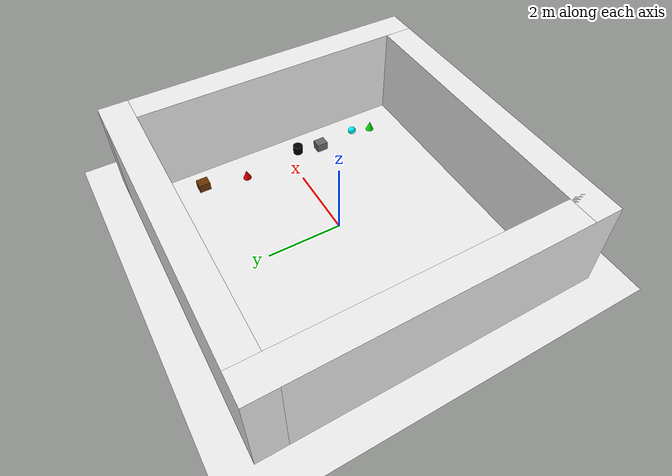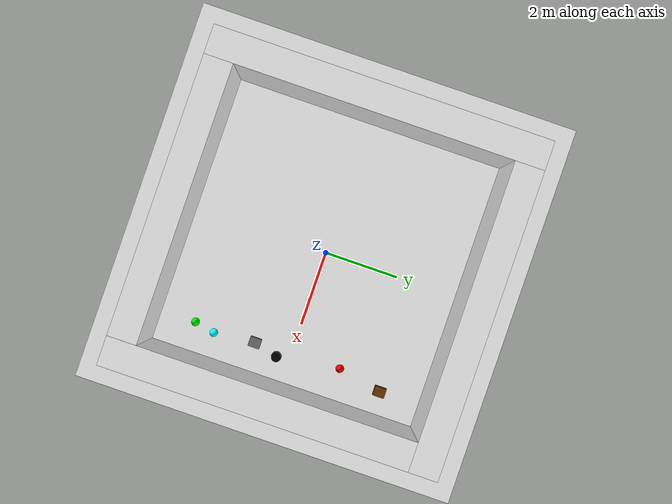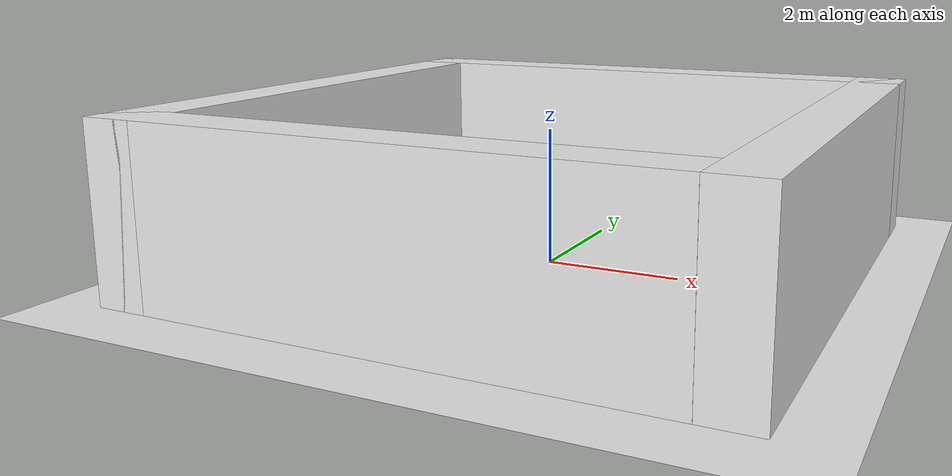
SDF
<sdf version="1.6">
 <world name="default">
  <light name="sun" type="directional">
   <pose>0 0 10 0 -0 0</pose>
   <diffuse>0.8 0.8 0.8 1</diffuse>
   <specular>0.2 0.2 0.2 1</specular>
   <attenuation>
    <range>1000</range>
    <constant>0.9</constant>
    <linear>0.01</linear>
    <quadratic>0.001</quadratic>
   </attenuation>
   <direction>-0.5 0.1 -0.9</direction>
  </light>
  <light name="sun" type="directional">
   <pose>0 0 13 0 -0 0</pose>
   <diffuse>0.8 0.8 0.8 1</diffuse>
   <specular>0.2 0.2 0.2 1</specular>
   <attenuation>
    <range>1000</range>
    <constant>0.9</constant>
    <linear>0.01</linear>
    <quadratic>0.001</quadratic>
   </attenuation>
   <direction>-0.5 0.1 -0.9</direction>
  </light>
  <model name="ground_plane">
   <static>1</static>
   <link name="link">
    <collision name="collision">
     <geometry><plane><normal>0 0 1</normal><size>100 100</size></plane></geometry>
     <surface>
      <contact><collide_bitmask>65535</collide_bitmask></contact>
      <friction><ode><mu>100</mu><mu2>50</mu2></ode></friction>
     </surface>
    </collision>
    <visual name="visual">
     <cast_shadows>0</cast_shadows>
     <geometry><plane><normal>0 0 1</normal><size>100 100</size></plane></geometry>
     <material>
      <script><uri>file://media/materials/scripts/gazebo.material</uri><name>Gazebo/White</name></script>
     </material>
    </visual>
   </link>
  </model>
  <gravity>0 0 -9.8</gravity>
  <magnetic_field>6e-06 2.3e-05 -4.2e-05</magnetic_field>
  <atmosphere type="adiabatic"/>
  <physics name="default_physics" default="0" type="ode">
   <max_step_size>0.001</max_step_size>
   <real_time_factor>1</real_time_factor>
   <real_time_update_rate>1000</real_time_update_rate>
  </physics>
  <scene><ambient>0.4 0.4 0.4 1</ambient><background>0.7 0.7 0.7 1</background><shadows>0</shadows></scene>
  <audio><device>default</device></audio>
  <spherical_coordinates>
   <surface_model>EARTH_WGS84</surface_model>
   <latitude_deg>0</latitude_deg>
   <longitude_deg>0</longitude_deg>
   <elevation>0</elevation>
   <heading_deg>0</heading_deg>
  </spherical_coordinates>
  <model name="m1">
   <link name="Wall_0">
    <collision name="Wall_0_Collision">
     <geometry><box><size>8.76 0.76 2.5</size></box></geometry>
     <pose>0 0 1.25 0 -0 0</pose>
    </collision>
    <visual name="Wall_0_Visual">
     <pose>0 0 1.25 0 -0 0</pose>
     <geometry><box><size>8.76 0.76 2.5</size></box></geometry>
     <material>
      <script><uri>file://media/materials/scripts/gazebo.material</uri><name>Gazebo/White</name></script>
      <ambient>1 1 1 1</ambient>
     </material>
     <meta><layer>0</layer></meta>
    </visual>
    <pose>-4 0 0 0 -0 -1.5708</pose>
   </link>
   <link name="Wall_2">
    <collision name="Wall_2_Collision">
     <geometry><box><size>8.76 0.76 2.5</size></box></geometry>
     <pose>0 0 1.25 0 -0 0</pose>
    </collision>
    <visual name="Wall_2_Visual">
     <pose>0 0 1.25 0 -0 0</pose>
     <geometry><box><size>8.76 0.76 2.5</size></box></geometry>
     <material>
      <script><uri>file://media/materials/scripts/gazebo.material</uri><name>Gazebo/White</name></script>
      <ambient>1 1 1 1</ambient>
     </material>
     <meta><layer>0</layer></meta>
    </visual>
    <pose>0 4 0 0 -0 3.14159</pose>
   </link>
   <link name="Wall_4">
    <collision name="Wall_4_Collision">
     <geometry><box><size>8.76 0.76 2.5</size></box></geometry>
     <pose>0 0 1.25 0 -0 0</pose>
    </collision>
    <visual name="Wall_4_Visual">
     <pose>0 0 1.25 0 -0 0</pose>
     <geometry><box><size>8.76 0.76 2.5</size></box></geometry>
     <material>
      <script><uri>file://media/materials/scripts/gazebo.material</uri><name>Gazebo/White</name></script>
      <ambient>1 1 1 1</ambient>
     </material>
     <meta><layer>0</layer></meta>
    </visual>
    <pose>4 0 0 0 -0 1.5708</pose>
   </link>
   <link name="Wall_6">
    <collision name="Wall_6_Collision">
     <geometry><box><size>7.999 0.76 2.5</size></box></geometry>
     <pose>0 0 1.25 0 -0 0</pose>
    </collision>
    <visual name="Wall_6_Visual">
     <pose>0 0 1.25 0 -0 0</pose>
     <geometry><box><size>7.999 0.76 2.5</size></box></geometry>
     <material>
      <script><uri>file://media/materials/scripts/gazebo.material</uri><name>Gazebo/White</name></script>
      <ambient>1 1 1 1</ambient>
     </material>
     <meta><layer>0</layer></meta>
    </visual>
    <pose>-0.3805 -4 0 0 -0 0</pose>
   </link>
   <static>1</static>
  </model>
  <light name="user_spot_light_0" type="spot">
   <pose>3.43494 3.34931 1 0 -0 0</pose>
   <diffuse>1 1 1 1</diffuse>
   <specular>1 1 1 1</specular>
   <direction>0 0 -1</direction>
   <attenuation>
    <range>20</range>
    <constant>0.01</constant>
    <linear>0.01</linear>
    <quadratic>0.001</quadratic>
   </attenuation>
   <cast_shadows>0</cast_shadows>
   <spot><inner_angle>1</inner_angle><outer_angle>0</outer_angle><falloff>0</falloff></spot>
  </light>
  <light name="user_spot_light_1" type="spot">
   <pose>3.5153 -3.32836 1 0 -0 0</pose>
   <diffuse>1 1 1 1</diffuse>
   <specular>1 1 1 1</specular>
   <direction>0 0 -1</direction>
   <attenuation>
    <range>20</range>
    <constant>0.01</constant>
    <linear>0.01</linear>
    <quadratic>0.001</quadratic>
   </attenuation>
   <cast_shadows>0</cast_shadows>
   <spot><inner_angle>1</inner_angle><outer_angle>0</outer_angle><falloff>0</falloff></spot>
  </light>
  <model name="cuboid">
   <link name="link_1">
    <inertial>
     <mass>1</mass>
     <inertia>
      <ixx>0.166667</ixx>
      <ixy>0</ixy>
      <ixz>0</ixz>
      <iyy>0.166667</iyy>
      <iyz>0</iyz>
      <izz>0.166667</izz>
     </inertia>
    </inertial>
    <pose>4e-06 -3e-06 0 0 -0 0</pose>
    <visual name="visual">
     <geometry>
      <mesh><uri>/home/pranavkdas/simulation_ws/src/hexbot/shapes/cuboid.stl</uri><scale>1 1 1</scale></mesh>
     </geometry>
     <material>
      <lighting>1</lighting>
      <ambient>0.4 0.2 0 1</ambient>
      <diffuse>0.4 0.2 0 1</diffuse>
      <specular>0.4 0.2 0 1</specular>
      <emissive>0.4 0.2 0 1</emissive>
     </material>
    </visual>
    <collision name="collision">
     <geometry>
      <mesh><uri>/home/pranavkdas/simulation_ws/src/hexbot/shapes/cuboid.stl</uri><scale>1 1 1</scale></mesh>
     </geometry>
     <surface>
      <friction>
       <ode><mu>1</mu><mu2>1</mu2><fdir1>0 0 0</fdir1><slip1>0</slip1><slip2>0</slip2></ode>
       <torsional>
        <coefficient>1</coefficient>
        <patch_radius>0</patch_radius>
        <surface_radius>0</surface_radius>
        <use_patch_radius>1</use_patch_radius>
        <ode><slip>0</slip></ode>
       </torsional>
      </friction>
      <bounce><restitution_coefficient>0</restitution_coefficient><threshold>1e+06</threshold></bounce>
      <contact>
       <collide_without_contact>0</collide_without_contact>
       <collide_without_contact_bitmask>1</collide_without_contact_bitmask>
       <collide_bitmask>1</collide_bitmask>
       <ode>
        <soft_cfm>0</soft_cfm>
        <soft_erp>0.2</soft_erp>
        <kp>1e+13</kp>
        <kd>1</kd>
        <max_vel>0.01</max_vel>
        <min_depth>0</min_depth>
       </ode>
       <bullet>
        <split_impulse>1</split_impulse>
        <split_impulse_penetration_threshold>-0.01</split_impulse_penetration_threshold>
        <soft_cfm>0</soft_cfm>
        <soft_erp>0.2</soft_erp>
        <kp>1e+13</kp>
        <kd>1</kd>
       </bullet>
      </contact>
     </surface>
    </collision>
   </link>
   <static>0</static>
   <pose>3.00093 2.53255 -7e-06 4e-06 -4e-06 0</pose>
  </model>
  <model name="sphere">
   <link name="link_4">
    <inertial>
     <mass>1</mass>
     <inertia>
      <ixx>0.166667</ixx>
      <ixy>0</ixy>
      <ixz>0</ixz>
      <iyy>0.166667</iyy>
      <iyz>0</iyz>
      <izz>0.166667</izz>
     </inertia>
    </inertial>
    <pose>-4e-06 0 0 0 -0 0</pose>
    <visual name="visual">
     <geometry>
      <mesh><uri>/home/pranavkdas/simulation_ws/src/hexbot/shapes/sphere.stl</uri><scale>1 1 1</scale></mesh>
     </geometry>
     <material>
      <lighting>1</lighting>
      <ambient>0 1 1 1</ambient>
      <diffuse>0 1 1 1</diffuse>
      <specular>0 1 1 1</specular>
      <emissive>0 1 1 1</emissive>
     </material>
    </visual>
    <collision name="collision">
     <geometry>
      <mesh><uri>/home/pranavkdas/simulation_ws/src/hexbot/shapes/sphere.stl</uri><scale>1 1 1</scale></mesh>
     </geometry>
     <surface>
      <friction>
       <ode><mu>1</mu><mu2>1</mu2><fdir1>0 0 0</fdir1><slip1>0</slip1><slip2>0</slip2></ode>
       <torsional>
        <coefficient>1</coefficient>
        <patch_radius>0</patch_radius>
        <surface_radius>0</surface_radius>
        <use_patch_radius>1</use_patch_radius>
        <ode><slip>0</slip></ode>
       </torsional>
      </friction>
      <bounce><restitution_coefficient>0</restitution_coefficient><threshold>1e+06</threshold></bounce>
      <contact>
       <collide_without_contact>0</collide_without_contact>
       <collide_without_contact_bitmask>1</collide_without_contact_bitmask>
       <collide_bitmask>1</collide_bitmask>
       <ode>
        <soft_cfm>0</soft_cfm>
        <soft_erp>0.2</soft_erp>
        <kp>1e+13</kp>
        <kd>1</kd>
        <max_vel>0.01</max_vel>
        <min_depth>0</min_depth>
       </ode>
       <bullet>
        <split_impulse>1</split_impulse>
        <split_impulse_penetration_threshold>-0.01</split_impulse_penetration_threshold>
        <soft_cfm>0</soft_cfm>
        <soft_erp>0.2</soft_erp>
        <kp>1e+13</kp>
        <kd>1</kd>
       </bullet>
      </contact>
     </surface>
    </collision>
   </link>
   <static>0</static>
   <pose>2.95037 -2.11625 0.111299 -0.049133 -0.049036 0.01673</pose>
  </model>
  <model name="cylinder_black">
   <link name="link_0">
    <inertial>
     <mass>1</mass>
     <inertia>
      <ixx>0.166667</ixx>
      <ixy>0</ixy>
      <ixz>0</ixz>
      <iyy>0.166667</iyy>
      <iyz>0</iyz>
      <izz>0.166667</izz>
     </inertia>
    </inertial>
    <pose>-4e-06 0 -0 0 -0 0</pose>
    <visual name="visual">
     <geometry>
      <mesh><uri>/home/pranavkdas/simulation_ws/src/hexbot/shapes/cylinder.stl</uri><scale>1 1 1</scale></mesh>
     </geometry>
     <material>
      <lighting>1</lighting>
      <script><uri>__default__</uri><name>ModelPreview_9::link_0::visual_MATERIAL_</name></script>
      <ambient>0 0 0 1</ambient>
      <shader type="vertex"><normal_map>__default__</normal_map></shader>
      <diffuse>0 0 0 1</diffuse>
      <specular>0 0 0 1</specular>
      <emissive>0 0 0 1</emissive>
     </material>
    </visual>
    <collision name="collision">
     <geometry>
      <mesh><uri>/home/pranavkdas/simulation_ws/src/hexbot/shapes/cylinder.stl</uri><scale>1 1 1</scale></mesh>
     </geometry>
     <surface>
      <friction>
       <ode><mu>1</mu><mu2>1</mu2><fdir1>0 0 0</fdir1><slip1>0</slip1><slip2>0</slip2></ode>
       <torsional>
        <coefficient>1</coefficient>
        <patch_radius>0</patch_radius>
        <surface_radius>0</surface_radius>
        <use_patch_radius>1</use_patch_radius>
        <ode><slip>0</slip></ode>
       </torsional>
      </friction>
      <bounce><restitution_coefficient>0</restitution_coefficient><threshold>1e+06</threshold></bounce>
      <contact>
       <collide_without_contact>0</collide_without_contact>
       <collide_without_contact_bitmask>1</collide_without_contact_bitmask>
       <collide_bitmask>1</collide_bitmask>
       <ode>
        <soft_cfm>0</soft_cfm>
        <soft_erp>0.2</soft_erp>
        <kp>1e+13</kp>
        <kd>1</kd>
        <max_vel>0.01</max_vel>
        <min_depth>0</min_depth>
       </ode>
       <bullet>
        <split_impulse>1</split_impulse>
        <split_impulse_penetration_threshold>-0.01</split_impulse_penetration_threshold>
        <soft_cfm>0</soft_cfm>
        <soft_erp>0.2</soft_erp>
        <kp>1e+13</kp>
        <kd>1</kd>
       </bullet>
      </contact>
     </surface>
    </collision>
   </link>
   <static>0</static>
   <pose>3.00963 -0.347061 -0 0 2e-06 0</pose>
  </model>
  <model name="cuboid_grey">
   <link name="link_1">
    <inertial>
     <mass>1</mass>
     <inertia>
      <ixx>0.166667</ixx>
      <ixy>0</ixy>
      <ixz>0</ixz>
      <iyy>0.166667</iyy>
      <iyz>0</iyz>
      <izz>0.166667</izz>
     </inertia>
    </inertial>
    <pose>4e-06 -3e-06 0 0 -0 0</pose>
    <visual name="visual">
     <geometry>
      <mesh><uri>/home/pranavkdas/simulation_ws/src/hexbot/shapes/cuboid.stl</uri><scale>1 1 1</scale></mesh>
     </geometry>
     <material>
      <lighting>1</lighting>
      <ambient>0.4 0.4 0.4 1</ambient>
      <diffuse>0.4 0.4 0.4 1</diffuse>
      <specular>0.4 0.4 0.4 1</specular>
      <emissive>0.4 0.4 0.4 1</emissive>
      <script><name>ModelPreview_12::link_1::visual_MATERIAL_</name><uri>__default__</uri></script>
      <shader type="vertex"><normal_map>__default__</normal_map></shader>
     </material>
    </visual>
    <collision name="collision">
     <geometry>
      <mesh><uri>/home/pranavkdas/simulation_ws/src/hexbot/shapes/cuboid.stl</uri><scale>1 1 1</scale></mesh>
     </geometry>
     <surface>
      <friction>
       <ode><mu>1</mu><mu2>1</mu2><fdir1>0 0 0</fdir1><slip1>0</slip1><slip2>0</slip2></ode>
       <torsional>
        <coefficient>1</coefficient>
        <patch_radius>0</patch_radius>
        <surface_radius>0</surface_radius>
        <use_patch_radius>1</use_patch_radius>
        <ode><slip>0</slip></ode>
       </torsional>
      </friction>
      <bounce><restitution_coefficient>0</restitution_coefficient><threshold>1e+06</threshold></bounce>
      <contact>
       <collide_without_contact>0</collide_without_contact>
       <collide_without_contact_bitmask>1</collide_without_contact_bitmask>
       <collide_bitmask>1</collide_bitmask>
       <ode>
        <soft_cfm>0</soft_cfm>
        <soft_erp>0.2</soft_erp>
        <kp>1e+13</kp>
        <kd>1</kd>
        <max_vel>0.01</max_vel>
        <min_depth>0</min_depth>
       </ode>
       <bullet>
        <split_impulse>1</split_impulse>
        <split_impulse_penetration_threshold>-0.01</split_impulse_penetration_threshold>
        <soft_cfm>0</soft_cfm>
        <soft_erp>0.2</soft_erp>
        <kp>1e+13</kp>
        <kd>1</kd>
       </bullet>
      </contact>
     </surface>
    </collision>
   </link>
   <static>0</static>
   <pose>2.83919 -0.999594 -7e-06 1e-06 -4e-06 0</pose>
  </model>
  <model name="cone_green">
   <link name="link_5">
    <inertial>
     <mass>1</mass>
     <inertia>
      <ixx>0.166667</ixx>
      <ixy>0</ixy>
      <ixz>0</ixz>
      <iyy>0.166667</iyy>
      <iyz>0</iyz>
      <izz>0.166667</izz>
     </inertia>
    </inertial>
    <pose>0.065828 0.108469 0 0 -0 0</pose>
    <visual name="visual">
     <geometry>
      <mesh><uri>/home/pranavkdas/simulation_ws/src/hexbot/shapes/cone.stl</uri><scale>1 1 1</scale></mesh>
     </geometry>
     <material>
      <lighting>1</lighting>
      <ambient>0 1 0 1</ambient>
      <diffuse>0 1 0 1</diffuse>
      <specular>0 1 0 1</specular>
      <emissive>0 1 0 1</emissive>
      <script><name>ModelPreview_18::link_5::visual_MATERIAL_</name><uri>__default__</uri></script>
      <shader type="vertex"><normal_map>__default__</normal_map></shader>
     </material>
    </visual>
    <collision name="collision">
     <geometry>
      <mesh><uri>/home/pranavkdas/simulation_ws/src/hexbot/shapes/cone.stl</uri><scale>1 1 1</scale></mesh>
     </geometry>
     <surface>
      <friction>
       <ode><mu>1</mu><mu2>1</mu2><fdir1>0 0 0</fdir1><slip1>0</slip1><slip2>0</slip2></ode>
       <torsional>
        <coefficient>1</coefficient>
        <patch_radius>0</patch_radius>
        <surface_radius>0</surface_radius>
        <use_patch_radius>1</use_patch_radius>
        <ode><slip>0</slip></ode>
       </torsional>
      </friction>
      <bounce><restitution_coefficient>0</restitution_coefficient><threshold>1e+06</threshold></bounce>
      <contact>
       <collide_without_contact>0</collide_without_contact>
       <collide_without_contact_bitmask>1</collide_without_contact_bitmask>
       <collide_bitmask>1</collide_bitmask>
       <ode>
        <soft_cfm>0</soft_cfm>
        <soft_erp>0.2</soft_erp>
        <kp>1e+13</kp>
        <kd>1</kd>
        <max_vel>0.01</max_vel>
        <min_depth>0</min_depth>
       </ode>
       <bullet>
        <split_impulse>1</split_impulse>
        <split_impulse_penetration_threshold>-0.01</split_impulse_penetration_threshold>
        <soft_cfm>0</soft_cfm>
        <soft_erp>0.2</soft_erp>
        <kp>1e+13</kp>
        <kd>1</kd>
       </bullet>
      </contact>
     </surface>
    </collision>
   </link>
   <static>0</static>
   <pose>2.78427 -2.78108 1e-06 -7e-06 1e-06 -0</pose>
  </model>
  <model name="cone">
   <link name="link_5">
    <inertial>
     <mass>1</mass>
     <inertia>
      <ixx>0.166667</ixx>
      <ixy>0</ixy>
      <ixz>0</ixz>
      <iyy>0.166667</iyy>
      <iyz>0</iyz>
      <izz>0.166667</izz>
     </inertia>
    </inertial>
    <pose>0.065828 0.108469 0 0 -0 0</pose>
    <visual name="visual">
     <geometry>
      <mesh><uri>/home/pranavkdas/simulation_ws/src/hexbot/shapes/cone.stl</uri><scale>1 1 1</scale></mesh>
     </geometry>
     <material>
      <lighting>1</lighting>
      <ambient>1 0 0 1</ambient>
      <diffuse>1 0 0 1</diffuse>
      <specular>1 0 0 1</specular>
      <emissive>1 0 0 1</emissive>
      <script><name>ModelPreview_4::link_5::visual_MATERIAL_</name><uri>__default__</uri></script>
     </material>
    </visual>
    <collision name="collision">
     <geometry>
      <mesh><uri>/home/pranavkdas/simulation_ws/src/hexbot/shapes/cone.stl</uri><scale>1 1 1</scale></mesh>
     </geometry>
     <surface>
      <friction>
       <ode><mu>1</mu><mu2>1</mu2><fdir1>0 0 0</fdir1><slip1>0</slip1><slip2>0</slip2></ode>
       <torsional>
        <coefficient>1</coefficient>
        <patch_radius>0</patch_radius>
        <surface_radius>0</surface_radius>
        <use_patch_radius>1</use_patch_radius>
        <ode><slip>0</slip></ode>
       </torsional>
      </friction>
      <bounce><restitution_coefficient>0</restitution_coefficient><threshold>1e+06</threshold></bounce>
      <contact>
       <collide_without_contact>0</collide_without_contact>
       <collide_without_contact_bitmask>1</collide_without_contact_bitmask>
       <collide_bitmask>1</collide_bitmask>
       <ode>
        <soft_cfm>0</soft_cfm>
        <soft_erp>0.2</soft_erp>
        <kp>1e+13</kp>
        <kd>1</kd>
        <max_vel>0.01</max_vel>
        <min_depth>0</min_depth>
       </ode>
       <bullet>
        <split_impulse>1</split_impulse>
        <split_impulse_penetration_threshold>-0.01</split_impulse_penetration_threshold>
        <soft_cfm>0</soft_cfm>
        <soft_erp>0.2</soft_erp>
        <kp>1e+13</kp>
        <kd>1</kd>
       </bullet>
      </contact>
     </surface>
    </collision>
   </link>
   <static>0</static>
   <pose>2.71277 1.24239 7e-06 -2e-05 2.4e-05 0</pose>
  </model>
 </world>
</sdf>
